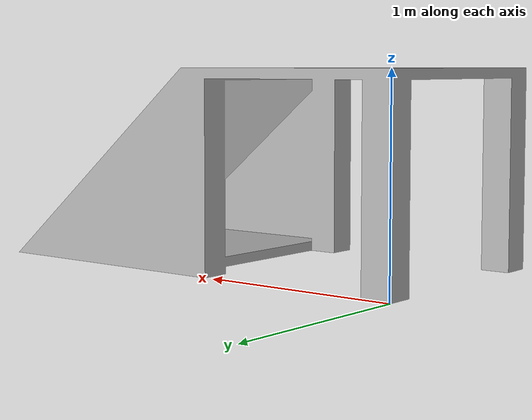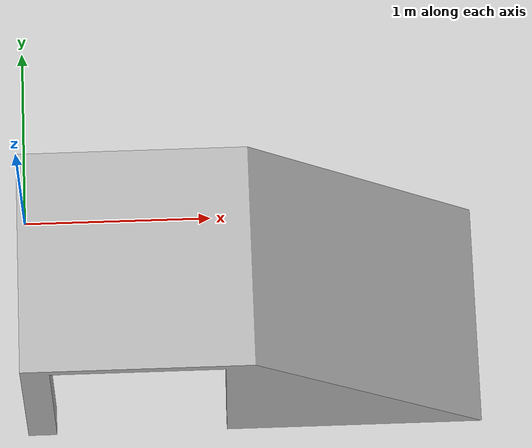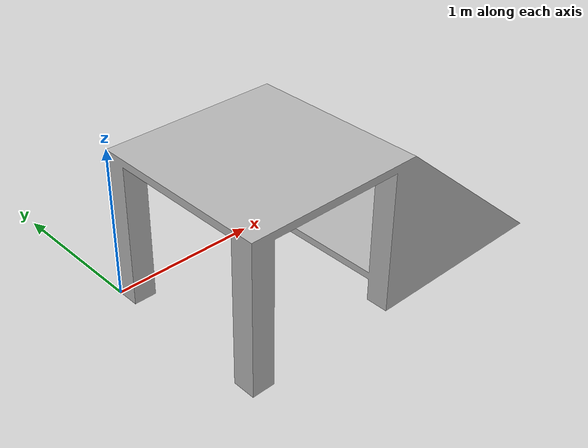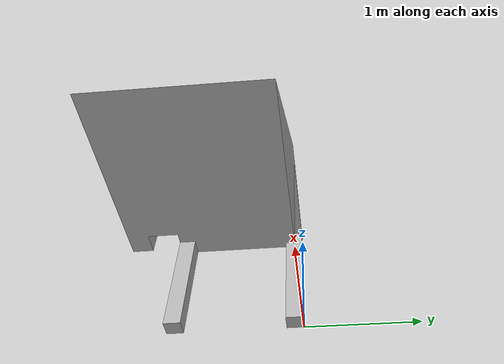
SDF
<?xml version='1.0'?>
<sdf version='1.6'>
  <model name='model-slope'>
    <static>true</static>
    <link name='base_link'>
      <pose frame=''>0 0 0 0 -0 0</pose>
      <inertial>
        <pose frame=''>1.2463 -0.6 0.47751 0 -0 0</pose>
        <mass>143.39</mass>
        <inertia>
          <ixx>45.301</ixx>
          <ixy>-1.6662e-14</ixy>
          <ixz>20.247</ixz>
          <iyy>84.673</iyy>
          <iyz>2.0075e-14</iyz>
          <izz>91.354</izz>
        </inertia>
      </inertial>
      <collision name='base_link_collision'>
        <pose frame=''>0 0 0 0 -0 0</pose>
        <geometry>
          <mesh>
            <scale>1 1 1</scale>
            <uri>model://model-slope/meshes/base_link.STL</uri>
          </mesh>
        </geometry>
        <surface>
            <contact>
              <collide_bitmask>65535</collide_bitmask>
              <ode/>
            </contact>
            <friction>
              <ode>
                <mu>100</mu>
                <mu2>50</mu2>
              </ode>
              <torsional>
                <ode/>
              </torsional>
            </friction>
            <bounce/>
          </surface>
      </collision>
      <visual name='base_link_visual'>
        <pose frame=''>0 0 0 0 -0 0</pose>
        <geometry>
          <mesh>
            <scale>1 1 1</scale>
            <uri>model://model-slope/meshes/base_link.STL</uri>
          </mesh>
        </geometry>
      </visual>
    </link>
  </model>
</sdf>
